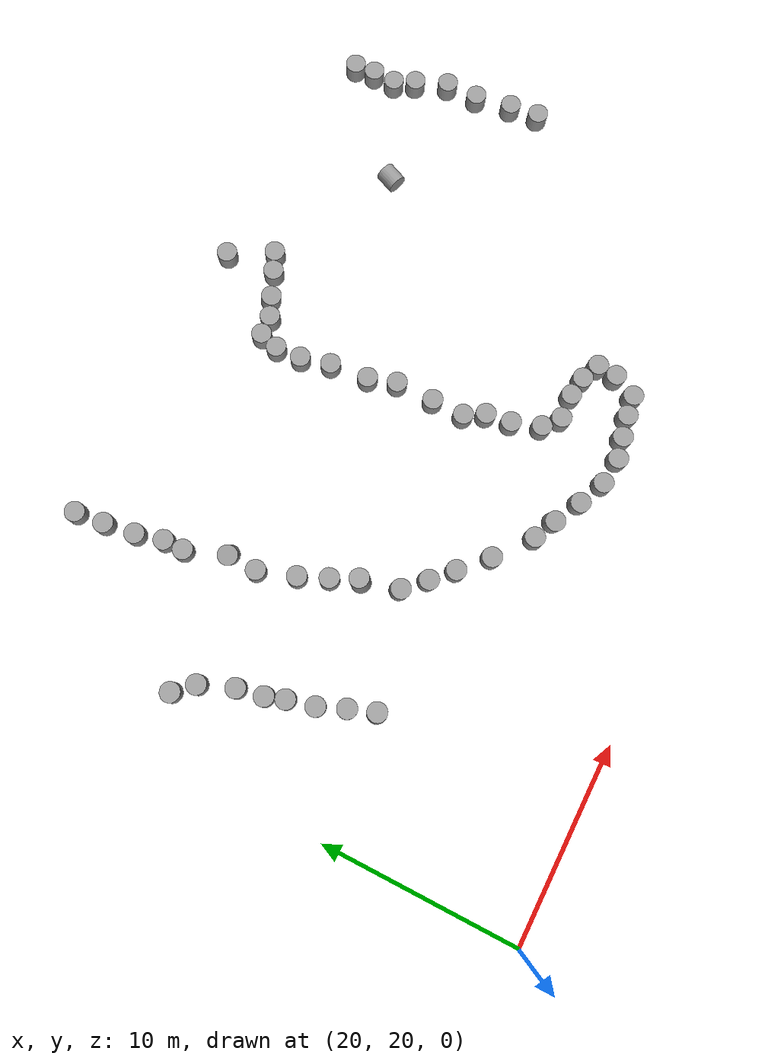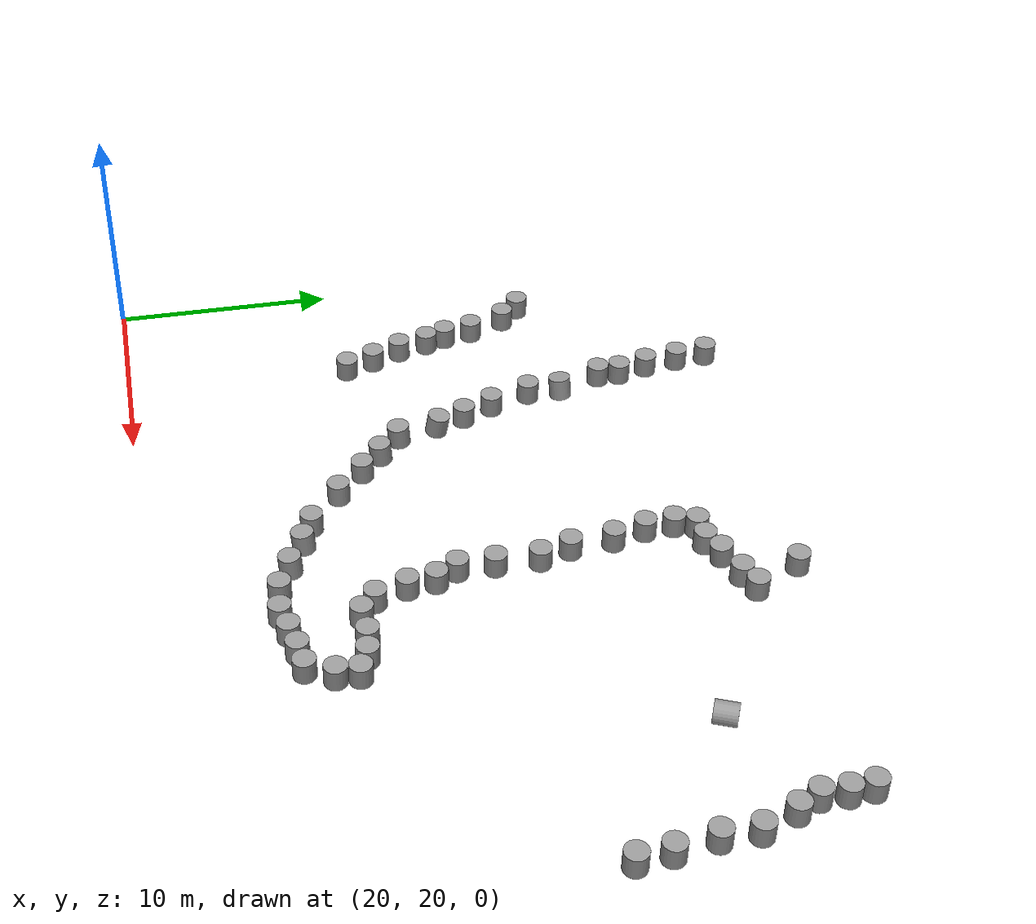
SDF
<sdf version="1.7">
 <world name="default">
  <model name="unit_cylinder_clone_40">
   <pose>28.2706 47.4767 0.449998 -2e-06 6e-06 -0.000437</pose>
   <link name="link">
    <inertial>
     <mass>1</mass>
     <inertia><ixx>0.145833</ixx><ixy>0</ixy><ixz>0</ixz><iyy>0.145833</iyy><iyz>0</iyz><izz>0.125</izz></inertia>
    </inertial>
    <collision name="collision">
     <geometry><cylinder><radius>0.5</radius><length>1</length></cylinder></geometry>
    </collision>
    <visual name="visual">
     <geometry><cylinder><radius>0.5</radius><length>1</length></cylinder></geometry>
     <material>
      <script><name>Gazebo/Grey</name><uri>file://media/materials/scripts/gazebo.material</uri></script>
     </material>
    </visual>
   </link>
  </model>
  <model name="unit_cylinder_clone_41">
   <pose>28.4209 46.0001 0.449995 -5e-06 6e-06 -0.001146</pose>
   <link name="link">
    <inertial>
     <mass>1</mass>
     <inertia><ixx>0.145833</ixx><ixy>0</ixy><ixz>0</ixz><iyy>0.145833</iyy><iyz>0</iyz><izz>0.125</izz></inertia>
    </inertial>
    <collision name="collision">
     <geometry><cylinder><radius>0.5</radius><length>1</length></cylinder></geometry>
    </collision>
    <visual name="visual">
     <geometry><cylinder><radius>0.5</radius><length>1</length></cylinder></geometry>
     <material>
      <script><name>Gazebo/Grey</name><uri>file://media/materials/scripts/gazebo.material</uri></script>
     </material>
    </visual>
   </link>
  </model>
  <model name="unit_cylinder_clone_42">
   <pose>28.6472 44.4234 0.449998 4e-06 6e-06 -0.002847</pose>
   <link name="link">
    <inertial>
     <mass>1</mass>
     <inertia><ixx>0.145833</ixx><ixy>0</ixy><ixz>0</ixz><iyy>0.145833</iyy><iyz>0</iyz><izz>0.125</izz></inertia>
    </inertial>
    <collision name="collision">
     <geometry><cylinder><radius>0.5</radius><length>1</length></cylinder></geometry>
    </collision>
    <visual name="visual">
     <geometry><cylinder><radius>0.5</radius><length>1</length></cylinder></geometry>
     <material>
      <script><name>Gazebo/Grey</name><uri>file://media/materials/scripts/gazebo.material</uri></script>
     </material>
    </visual>
   </link>
  </model>
  <model name="unit_cylinder_clone_43">
   <pose>28.9953 43.0368 0.449997 2e-06 2e-06 -0.000409</pose>
   <link name="link">
    <inertial>
     <mass>1</mass>
     <inertia><ixx>0.145833</ixx><ixy>0</ixy><ixz>0</ixz><iyy>0.145833</iyy><iyz>0</iyz><izz>0.125</izz></inertia>
    </inertial>
    <collision name="collision">
     <geometry><cylinder><radius>0.5</radius><length>1</length></cylinder></geometry>
    </collision>
    <visual name="visual">
     <geometry><cylinder><radius>0.5</radius><length>1</length></cylinder></geometry>
     <material>
      <script><name>Gazebo/Grey</name><uri>file://media/materials/scripts/gazebo.material</uri></script>
     </material>
    </visual>
   </link>
  </model>
  <model name="unit_cylinder_clone_44">
   <pose>28.9999 41.9999 0.449996 -1e-06 -1e-05 -0.000407</pose>
   <link name="link">
    <inertial>
     <mass>1</mass>
     <inertia><ixx>0.145833</ixx><ixy>0</ixy><ixz>0</ixz><iyy>0.145833</iyy><iyz>0</iyz><izz>0.125</izz></inertia>
    </inertial>
    <collision name="collision">
     <geometry><cylinder><radius>0.5</radius><length>1</length></cylinder></geometry>
    </collision>
    <visual name="visual">
     <geometry><cylinder><radius>0.5</radius><length>1</length></cylinder></geometry>
     <material>
      <script><name>Gazebo/Grey</name><uri>file://media/materials/scripts/gazebo.material</uri></script>
     </material>
    </visual>
   </link>
  </model>
  <model name="unit_cylinder_clone_45">
   <pose>29.7901 39.9739 0.521916 0.043896 -0.150505 0.063909</pose>
   <link name="link">
    <inertial>
     <mass>1</mass>
     <inertia><ixx>0.145833</ixx><ixy>0</ixy><ixz>0</ixz><iyy>0.145833</iyy><iyz>0</iyz><izz>0.125</izz></inertia>
    </inertial>
    <collision name="collision">
     <geometry><cylinder><radius>0.5</radius><length>1</length></cylinder></geometry>
    </collision>
    <visual name="visual">
     <geometry><cylinder><radius>0.5</radius><length>1</length></cylinder></geometry>
     <material>
      <script><name>Gazebo/Grey</name><uri>file://media/materials/scripts/gazebo.material</uri></script>
     </material>
    </visual>
   </link>
  </model>
  <model name="unit_cylinder_clone_46">
   <pose>29.7046 38.4537 0.449997 -3e-06 -1.6e-05 -0.000471</pose>
   <link name="link">
    <inertial>
     <mass>1</mass>
     <inertia><ixx>0.145833</ixx><ixy>0</ixy><ixz>0</ixz><iyy>0.145833</iyy><iyz>0</iyz><izz>0.125</izz></inertia>
    </inertial>
    <collision name="collision">
     <geometry><cylinder><radius>0.5</radius><length>1</length></cylinder></geometry>
    </collision>
    <visual name="visual">
     <geometry><cylinder><radius>0.5</radius><length>1</length></cylinder></geometry>
     <material>
      <script><name>Gazebo/Grey</name><uri>file://media/materials/scripts/gazebo.material</uri></script>
     </material>
    </visual>
   </link>
  </model>
  <model name="unit_cylinder_clone_47">
   <pose>30.3299 36.5776 0.449996 2e-06 -1e-06 -0.000429</pose>
   <link name="link">
    <inertial>
     <mass>1</mass>
     <inertia><ixx>0.145833</ixx><ixy>0</ixy><ixz>0</ixz><iyy>0.145833</iyy><iyz>0</iyz><izz>0.125</izz></inertia>
    </inertial>
    <collision name="collision">
     <geometry><cylinder><radius>0.5</radius><length>1</length></cylinder></geometry>
    </collision>
    <visual name="visual">
     <geometry><cylinder><radius>0.5</radius><length>1</length></cylinder></geometry>
     <material>
      <script><name>Gazebo/Grey</name><uri>file://media/materials/scripts/gazebo.material</uri></script>
     </material>
    </visual>
   </link>
  </model>
  <model name="unit_cylinder_clone_48">
   <pose>30.9384 35.1625 0.4581 -0.014949 0.006573 -0.004222</pose>
   <link name="link">
    <inertial>
     <mass>1</mass>
     <inertia><ixx>0.145833</ixx><ixy>0</ixy><ixz>0</ixz><iyy>0.145833</iyy><iyz>0</iyz><izz>0.125</izz></inertia>
    </inertial>
    <collision name="collision">
     <geometry><cylinder><radius>0.5</radius><length>1</length></cylinder></geometry>
    </collision>
    <visual name="visual">
     <geometry><cylinder><radius>0.5</radius><length>1</length></cylinder></geometry>
     <material>
      <script><name>Gazebo/Grey</name><uri>file://media/materials/scripts/gazebo.material</uri></script>
     </material>
    </visual>
   </link>
  </model>
  <model name="unit_cylinder_clone_49">
   <pose>31.5256 33.8276 0.545893 -0.149557 0.068168 -0.025049</pose>
   <link name="link">
    <inertial>
     <mass>1</mass>
     <inertia><ixx>0.145833</ixx><ixy>0</ixy><ixz>0</ixz><iyy>0.145833</iyy><iyz>0</iyz><izz>0.125</izz></inertia>
    </inertial>
    <collision name="collision">
     <geometry><cylinder><radius>0.5</radius><length>1</length></cylinder></geometry>
    </collision>
    <visual name="visual">
     <geometry><cylinder><radius>0.5</radius><length>1</length></cylinder></geometry>
     <material>
      <script><name>Gazebo/Grey</name><uri>file://media/materials/scripts/gazebo.material</uri></script>
     </material>
    </visual>
   </link>
  </model>
  <model name="unit_cylinder_clone_50">
   <pose>31.9968 31.9487 0.562286 0.066819 -0.002533 -0.000927</pose>
   <link name="link">
    <inertial>
     <mass>1</mass>
     <inertia><ixx>0.145833</ixx><ixy>0</ixy><ixz>0</ixz><iyy>0.145833</iyy><iyz>0</iyz><izz>0.125</izz></inertia>
    </inertial>
    <collision name="collision">
     <geometry><cylinder><radius>0.5</radius><length>1</length></cylinder></geometry>
    </collision>
    <visual name="visual">
     <geometry><cylinder><radius>0.5</radius><length>1</length></cylinder></geometry>
     <material>
      <script><name>Gazebo/Grey</name><uri>file://media/materials/scripts/gazebo.material</uri></script>
     </material>
    </visual>
   </link>
  </model>
  <model name="unit_cylinder_clone_51">
   <pose>32.9965 30.9516 0.496949 0.070173 -0.007378 -0.00225</pose>
   <link name="link">
    <inertial>
     <mass>1</mass>
     <inertia><ixx>0.145833</ixx><ixy>0</ixy><ixz>0</ixz><iyy>0.145833</iyy><iyz>0</iyz><izz>0.125</izz></inertia>
    </inertial>
    <collision name="collision">
     <geometry><cylinder><radius>0.5</radius><length>1</length></cylinder></geometry>
    </collision>
    <visual name="visual">
     <geometry><cylinder><radius>0.5</radius><length>1</length></cylinder></geometry>
     <material>
      <script><name>Gazebo/Grey</name><uri>file://media/materials/scripts/gazebo.material</uri></script>
     </material>
    </visual>
   </link>
  </model>
  <model name="unit_cylinder_clone_52">
   <pose>33.997 29.9847 0.460635 0.021172 -0.003893 0.001574</pose>
   <link name="link">
    <inertial>
     <mass>1</mass>
     <inertia><ixx>0.145833</ixx><ixy>0</ixy><ixz>0</ixz><iyy>0.145833</iyy><iyz>0</iyz><izz>0.125</izz></inertia>
    </inertial>
    <collision name="collision">
     <geometry><cylinder><radius>0.5</radius><length>1</length></cylinder></geometry>
    </collision>
    <visual name="visual">
     <geometry><cylinder><radius>0.5</radius><length>1</length></cylinder></geometry>
     <material>
      <script><name>Gazebo/Grey</name><uri>file://media/materials/scripts/gazebo.material</uri></script>
     </material>
    </visual>
   </link>
  </model>
  <model name="unit_cylinder_clone_53">
   <pose>35.3203 28.7401 0.460367 0.012616 -0.016827 -0.004228</pose>
   <link name="link">
    <inertial>
     <mass>1</mass>
     <inertia><ixx>0.145833</ixx><ixy>0</ixy><ixz>0</ixz><iyy>0.145833</iyy><iyz>0</iyz><izz>0.125</izz></inertia>
    </inertial>
    <collision name="collision">
     <geometry><cylinder><radius>0.5</radius><length>1</length></cylinder></geometry>
    </collision>
    <visual name="visual">
     <geometry><cylinder><radius>0.5</radius><length>1</length></cylinder></geometry>
     <material>
      <script><name>Gazebo/Grey</name><uri>file://media/materials/scripts/gazebo.material</uri></script>
     </material>
    </visual>
   </link>
  </model>
  <model name="unit_cylinder_clone_54">
   <pose>37.0983 27.3236 0.449999 -2.1e-05 3.2e-05 0.083038</pose>
   <link name="link">
    <inertial>
     <mass>1</mass>
     <inertia><ixx>0.145833</ixx><ixy>0</ixy><ixz>0</ixz><iyy>0.145833</iyy><iyz>0</iyz><izz>0.125</izz></inertia>
    </inertial>
    <collision name="collision">
     <geometry><cylinder><radius>0.5</radius><length>1</length></cylinder></geometry>
    </collision>
    <visual name="visual">
     <geometry><cylinder><radius>0.5</radius><length>1</length></cylinder></geometry>
     <material>
      <script><name>Gazebo/Grey</name><uri>file://media/materials/scripts/gazebo.material</uri></script>
     </material>
    </visual>
   </link>
  </model>
  <model name="unit_cylinder_clone_55">
   <pose>38.2509 26.8191 0.479731 0.075918 -0.03911 -0.014282</pose>
   <link name="link">
    <inertial>
     <mass>1</mass>
     <inertia><ixx>0.145833</ixx><ixy>0</ixy><ixz>0</ixz><iyy>0.145833</iyy><iyz>0</iyz><izz>0.125</izz></inertia>
    </inertial>
    <collision name="collision">
     <geometry><cylinder><radius>0.5</radius><length>1</length></cylinder></geometry>
    </collision>
    <visual name="visual">
     <geometry><cylinder><radius>0.5</radius><length>1</length></cylinder></geometry>
     <material>
      <script><name>Gazebo/Grey</name><uri>file://media/materials/scripts/gazebo.material</uri></script>
     </material>
    </visual>
   </link>
  </model>
  <model name="unit_cylinder_clone_56">
   <pose>39.6128 26.1087 0.47015 0.05068 -0.026128 -0.01348</pose>
   <link name="link">
    <inertial>
     <mass>1</mass>
     <inertia><ixx>0.145833</ixx><ixy>0</ixy><ixz>0</ixz><iyy>0.145833</iyy><iyz>0</iyz><izz>0.125</izz></inertia>
    </inertial>
    <collision name="collision">
     <geometry><cylinder><radius>0.5</radius><length>1</length></cylinder></geometry>
    </collision>
    <visual name="visual">
     <geometry><cylinder><radius>0.5</radius><length>1</length></cylinder></geometry>
     <material>
      <script><name>Gazebo/Grey</name><uri>file://media/materials/scripts/gazebo.material</uri></script>
     </material>
    </visual>
   </link>
  </model>
  <model name="unit_cylinder_clone_57">
   <pose>40.9835 25.5019 0.45185 -0.001512 -0.003464 0.144389</pose>
   <link name="link">
    <inertial>
     <mass>1</mass>
     <inertia><ixx>0.145833</ixx><ixy>0</ixy><ixz>0</ixz><iyy>0.145833</iyy><iyz>0</iyz><izz>0.125</izz></inertia>
    </inertial>
    <collision name="collision">
     <geometry><cylinder><radius>0.5</radius><length>1</length></cylinder></geometry>
    </collision>
    <visual name="visual">
     <geometry><cylinder><radius>0.5</radius><length>1</length></cylinder></geometry>
     <material>
      <script><name>Gazebo/Grey</name><uri>file://media/materials/scripts/gazebo.material</uri></script>
     </material>
    </visual>
   </link>
  </model>
  <model name="unit_cylinder_clone_58">
   <pose>42.3932 25.3653 0.461981 -0.006801 -0.006234 0.55232</pose>
   <link name="link">
    <inertial>
     <mass>1</mass>
     <inertia><ixx>0.145833</ixx><ixy>0</ixy><ixz>0</ixz><iyy>0.145833</iyy><iyz>0</iyz><izz>0.125</izz></inertia>
    </inertial>
    <collision name="collision">
     <geometry><cylinder><radius>0.5</radius><length>1</length></cylinder></geometry>
    </collision>
    <visual name="visual">
     <geometry><cylinder><radius>0.5</radius><length>1</length></cylinder></geometry>
     <material>
      <script><name>Gazebo/Grey</name><uri>file://media/materials/scripts/gazebo.material</uri></script>
     </material>
    </visual>
   </link>
  </model>
  <model name="unit_cylinder_clone_59">
   <pose>43.4737 25.5985 0.459168 -0.006183 0.006722 -0.012795</pose>
   <link name="link">
    <inertial>
     <mass>1</mass>
     <inertia><ixx>0.145833</ixx><ixy>0</ixy><ixz>0</ixz><iyy>0.145833</iyy><iyz>0</iyz><izz>0.125</izz></inertia>
    </inertial>
    <collision name="collision">
     <geometry><cylinder><radius>0.5</radius><length>1</length></cylinder></geometry>
    </collision>
    <visual name="visual">
     <geometry><cylinder><radius>0.5</radius><length>1</length></cylinder></geometry>
     <material>
      <script><name>Gazebo/Grey</name><uri>file://media/materials/scripts/gazebo.material</uri></script>
     </material>
    </visual>
   </link>
  </model>
  <model name="unit_cylinder_clone_60">
   <pose>44.5677 25.8286 0.451107 -0.007543 0.004491 -0.016894</pose>
   <link name="link">
    <inertial>
     <mass>1</mass>
     <inertia><ixx>0.145833</ixx><ixy>0</ixy><ixz>0</ixz><iyy>0.145833</iyy><iyz>0</iyz><izz>0.125</izz></inertia>
    </inertial>
    <collision name="collision">
     <geometry><cylinder><radius>0.5</radius><length>1</length></cylinder></geometry>
    </collision>
    <visual name="visual">
     <geometry><cylinder><radius>0.5</radius><length>1</length></cylinder></geometry>
     <material>
      <script><name>Gazebo/Grey</name><uri>file://media/materials/scripts/gazebo.material</uri></script>
     </material>
    </visual>
   </link>
  </model>
  <model name="unit_cylinder_clone_61">
   <pose>45.5954 25.9902 0.435513 0.004527 0.028084 0.01941</pose>
   <link name="link">
    <inertial>
     <mass>1</mass>
     <inertia><ixx>0.145833</ixx><ixy>0</ixy><ixz>0</ixz><iyy>0.145833</iyy><iyz>0</iyz><izz>0.125</izz></inertia>
    </inertial>
    <collision name="collision">
     <geometry><cylinder><radius>0.5</radius><length>1</length></cylinder></geometry>
    </collision>
    <visual name="visual">
     <geometry><cylinder><radius>0.5</radius><length>1</length></cylinder></geometry>
     <material>
      <script><name>Gazebo/Grey</name><uri>file://media/materials/scripts/gazebo.material</uri></script>
     </material>
    </visual>
   </link>
  </model>
  <model name="unit_cylinder_clone_62">
   <pose>46.1691 27.1614 0.422465 -0.003016 0.018332 -0.064298</pose>
   <link name="link">
    <inertial>
     <mass>1</mass>
     <inertia><ixx>0.145833</ixx><ixy>0</ixy><ixz>0</ixz><iyy>0.145833</iyy><iyz>0</iyz><izz>0.125</izz></inertia>
    </inertial>
    <collision name="collision">
     <geometry><cylinder><radius>0.5</radius><length>1</length></cylinder></geometry>
    </collision>
    <visual name="visual">
     <geometry><cylinder><radius>0.5</radius><length>1</length></cylinder></geometry>
     <material>
      <script><name>Gazebo/Grey</name><uri>file://media/materials/scripts/gazebo.material</uri></script>
     </material>
    </visual>
   </link>
  </model>
  <model name="unit_cylinder_clone_63">
   <pose>46.2578 28.164 0.418753 -0.002547 0.01705 -0.02722</pose>
   <link name="link">
    <inertial>
     <mass>1</mass>
     <inertia><ixx>0.145833</ixx><ixy>0</ixy><ixz>0</ixz><iyy>0.145833</iyy><iyz>0</iyz><izz>0.125</izz></inertia>
    </inertial>
    <collision name="collision">
     <geometry><cylinder><radius>0.5</radius><length>1</length></cylinder></geometry>
    </collision>
    <visual name="visual">
     <geometry><cylinder><radius>0.5</radius><length>1</length></cylinder></geometry>
     <material>
      <script><name>Gazebo/Grey</name><uri>file://media/materials/scripts/gazebo.material</uri></script>
     </material>
    </visual>
   </link>
  </model>
  <model name="unit_cylinder_clone_64">
   <pose>45.3182 28.57 0.428564 -0.005621 0.007208 0.045716</pose>
   <link name="link">
    <inertial>
     <mass>1</mass>
     <inertia><ixx>0.145833</ixx><ixy>0</ixy><ixz>0</ixz><iyy>0.145833</iyy><iyz>0</iyz><izz>0.125</izz></inertia>
    </inertial>
    <collision name="collision">
     <geometry><cylinder><radius>0.5</radius><length>1</length></cylinder></geometry>
    </collision>
    <visual name="visual">
     <geometry><cylinder><radius>0.5</radius><length>1</length></cylinder></geometry>
     <material>
      <script><name>Gazebo/Grey</name><uri>file://media/materials/scripts/gazebo.material</uri></script>
     </material>
    </visual>
   </link>
  </model>
  <model name="unit_cylinder_clone_65">
   <pose>44.2873 28.7141 0.435556 -0.004921 0.008388 0.028474</pose>
   <link name="link">
    <inertial>
     <mass>1</mass>
     <inertia><ixx>0.145833</ixx><ixy>0</ixy><ixz>0</ixz><iyy>0.145833</iyy><iyz>0</iyz><izz>0.125</izz></inertia>
    </inertial>
    <collision name="collision">
     <geometry><cylinder><radius>0.5</radius><length>1</length></cylinder></geometry>
    </collision>
    <visual name="visual">
     <geometry><cylinder><radius>0.5</radius><length>1</length></cylinder></geometry>
     <material>
      <script><name>Gazebo/Grey</name><uri>file://media/materials/scripts/gazebo.material</uri></script>
     </material>
    </visual>
   </link>
  </model>
  <model name="unit_cylinder_clone_66">
   <pose>43.0154 28.6533 0.446354 -0.005135 0.008249 0.001852</pose>
   <link name="link">
    <inertial>
     <mass>1</mass>
     <inertia><ixx>0.145833</ixx><ixy>0</ixy><ixz>0</ixz><iyy>0.145833</iyy><iyz>0</iyz><izz>0.125</izz></inertia>
    </inertial>
    <collision name="collision">
     <geometry><cylinder><radius>0.5</radius><length>1</length></cylinder></geometry>
    </collision>
    <visual name="visual">
     <geometry><cylinder><radius>0.5</radius><length>1</length></cylinder></geometry>
     <material>
      <script><name>Gazebo/Grey</name><uri>file://media/materials/scripts/gazebo.material</uri></script>
     </material>
    </visual>
   </link>
  </model>
  <model name="unit_cylinder_clone_67">
   <pose>42.2027 29.3361 0.452303 -0.001311 0.012247 -0.000434</pose>
   <link name="link">
    <inertial>
     <mass>1</mass>
     <inertia><ixx>0.145833</ixx><ixy>0</ixy><ixz>0</ixz><iyy>0.145833</iyy><iyz>0</iyz><izz>0.125</izz></inertia>
    </inertial>
    <collision name="collision">
     <geometry><cylinder><radius>0.5</radius><length>1</length></cylinder></geometry>
    </collision>
    <visual name="visual">
     <geometry><cylinder><radius>0.5</radius><length>1</length></cylinder></geometry>
     <material>
      <script><name>Gazebo/Grey</name><uri>file://media/materials/scripts/gazebo.material</uri></script>
     </material>
    </visual>
   </link>
  </model>
  <model name="unit_cylinder_clone_68">
   <pose>41.7172 30.7624 0.45005 -7e-06 7e-06 -0.000466</pose>
   <link name="link">
    <inertial>
     <mass>1</mass>
     <inertia><ixx>0.145833</ixx><ixy>0</ixy><ixz>0</ixz><iyy>0.145833</iyy><iyz>0</iyz><izz>0.125</izz></inertia>
    </inertial>
    <collision name="collision">
     <geometry><cylinder><radius>0.5</radius><length>1</length></cylinder></geometry>
    </collision>
    <visual name="visual">
     <geometry><cylinder><radius>0.5</radius><length>1</length></cylinder></geometry>
     <material>
      <script><name>Gazebo/Grey</name><uri>file://media/materials/scripts/gazebo.material</uri></script>
     </material>
    </visual>
   </link>
  </model>
  <model name="unit_cylinder_clone_69">
   <pose>41.5393 32.028 0.450051 -0 5e-06 -0.00044</pose>
   <link name="link">
    <inertial>
     <mass>1</mass>
     <inertia><ixx>0.145833</ixx><ixy>0</ixy><ixz>0</ixz><iyy>0.145833</iyy><iyz>0</iyz><izz>0.125</izz></inertia>
    </inertial>
    <collision name="collision">
     <geometry><cylinder><radius>0.5</radius><length>1</length></cylinder></geometry>
    </collision>
    <visual name="visual">
     <geometry><cylinder><radius>0.5</radius><length>1</length></cylinder></geometry>
     <material>
      <script><name>Gazebo/Grey</name><uri>file://media/materials/scripts/gazebo.material</uri></script>
     </material>
    </visual>
   </link>
  </model>
  <model name="unit_cylinder_clone_70">
   <pose>40.9999 33 0.450049 -0 -3e-06 -0.000337</pose>
   <link name="link">
    <inertial>
     <mass>1</mass>
     <inertia><ixx>0.145833</ixx><ixy>0</ixy><ixz>0</ixz><iyy>0.145833</iyy><iyz>0</iyz><izz>0.125</izz></inertia>
    </inertial>
    <collision name="collision">
     <geometry><cylinder><radius>0.5</radius><length>1</length></cylinder></geometry>
    </collision>
    <visual name="visual">
     <geometry><cylinder><radius>0.5</radius><length>1</length></cylinder></geometry>
     <material>
      <script><name>Gazebo/Grey</name><uri>file://media/materials/scripts/gazebo.material</uri></script>
     </material>
    </visual>
   </link>
  </model>
  <model name="unit_cylinder_clone_71">
   <pose>41.0036 34.6529 0.450043 0 -0 -0.000463</pose>
   <link name="link">
    <inertial>
     <mass>1</mass>
     <inertia><ixx>0.145833</ixx><ixy>0</ixy><ixz>0</ixz><iyy>0.145833</iyy><iyz>0</iyz><izz>0.125</izz></inertia>
    </inertial>
    <collision name="collision">
     <geometry><cylinder><radius>0.5</radius><length>1</length></cylinder></geometry>
    </collision>
    <visual name="visual">
     <geometry><cylinder><radius>0.5</radius><length>1</length></cylinder></geometry>
     <material>
      <script><name>Gazebo/Grey</name><uri>file://media/materials/scripts/gazebo.material</uri></script>
     </material>
    </visual>
   </link>
  </model>
  <model name="unit_cylinder_clone_72">
   <pose>41.0001 36.5959 0.450031 -3.6e-05 0.000243 -0.000418</pose>
   <link name="link">
    <inertial>
     <mass>1</mass>
     <inertia><ixx>0.145833</ixx><ixy>0</ixy><ixz>0</ixz><iyy>0.145833</iyy><iyz>0</iyz><izz>0.125</izz></inertia>
    </inertial>
    <collision name="collision">
     <geometry><cylinder><radius>0.5</radius><length>1</length></cylinder></geometry>
    </collision>
    <visual name="visual">
     <geometry><cylinder><radius>0.5</radius><length>1</length></cylinder></geometry>
     <material>
      <script><name>Gazebo/Grey</name><uri>file://media/materials/scripts/gazebo.material</uri></script>
     </material>
    </visual>
   </link>
  </model>
  <model name="unit_cylinder_clone_73">
   <pose>40.5703 37.9999 0.450035 -2e-06 -1e-06 -0.000477</pose>
   <link name="link">
    <inertial>
     <mass>1</mass>
     <inertia><ixx>0.145833</ixx><ixy>0</ixy><ixz>0</ixz><iyy>0.145833</iyy><iyz>0</iyz><izz>0.125</izz></inertia>
    </inertial>
    <collision name="collision">
     <geometry><cylinder><radius>0.5</radius><length>1</length></cylinder></geometry>
    </collision>
    <visual name="visual">
     <geometry><cylinder><radius>0.5</radius><length>1</length></cylinder></geometry>
     <material>
      <script><name>Gazebo/Grey</name><uri>file://media/materials/scripts/gazebo.material</uri></script>
     </material>
    </visual>
   </link>
  </model>
  <model name="unit_cylinder_clone_74">
   <pose>40.3791 39.9405 0.450032 3e-06 -0 -0.000429</pose>
   <link name="link">
    <inertial>
     <mass>1</mass>
     <inertia><ixx>0.145833</ixx><ixy>0</ixy><ixz>0</ixz><iyy>0.145833</iyy><iyz>0</iyz><izz>0.125</izz></inertia>
    </inertial>
    <collision name="collision">
     <geometry><cylinder><radius>0.5</radius><length>1</length></cylinder></geometry>
    </collision>
    <visual name="visual">
     <geometry><cylinder><radius>0.5</radius><length>1</length></cylinder></geometry>
     <material>
      <script><name>Gazebo/Grey</name><uri>file://media/materials/scripts/gazebo.material</uri></script>
     </material>
    </visual>
   </link>
  </model>
  <model name="unit_cylinder_clone_75">
   <pose>39.9999 41.4197 0.450027 -7e-06 -1e-06 -0.000478</pose>
   <link name="link">
    <inertial>
     <mass>1</mass>
     <inertia><ixx>0.145833</ixx><ixy>0</ixy><ixz>0</ixz><iyy>0.145833</iyy><iyz>0</iyz><izz>0.125</izz></inertia>
    </inertial>
    <collision name="collision">
     <geometry><cylinder><radius>0.5</radius><length>1</length></cylinder></geometry>
    </collision>
    <visual name="visual">
     <geometry><cylinder><radius>0.5</radius><length>1</length></cylinder></geometry>
     <material>
      <script><name>Gazebo/Grey</name><uri>file://media/materials/scripts/gazebo.material</uri></script>
     </material>
    </visual>
   </link>
  </model>
  <model name="unit_cylinder_clone_76">
   <pose>39.9277 42.7244 0.45264 0.004986 -0.002018 0.104061</pose>
   <link name="link">
    <inertial>
     <mass>1</mass>
     <inertia><ixx>0.145833</ixx><ixy>0</ixy><ixz>0</ixz><iyy>0.145833</iyy><iyz>0</iyz><izz>0.125</izz></inertia>
    </inertial>
    <collision name="collision">
     <geometry><cylinder><radius>0.5</radius><length>1</length></cylinder></geometry>
    </collision>
    <visual name="visual">
     <geometry><cylinder><radius>0.5</radius><length>1</length></cylinder></geometry>
     <material>
      <script><name>Gazebo/Grey</name><uri>file://media/materials/scripts/gazebo.material</uri></script>
     </material>
    </visual>
   </link>
  </model>
  <model name="unit_cylinder_clone_77">
   <pose>40.2066 43.6847 0.452386 0.005693 0.000655 -0.052563</pose>
   <link name="link">
    <inertial>
     <mass>1</mass>
     <inertia><ixx>0.145833</ixx><ixy>0</ixy><ixz>0</ixz><iyy>0.145833</iyy><iyz>0</iyz><izz>0.125</izz></inertia>
    </inertial>
    <collision name="collision">
     <geometry><cylinder><radius>0.5</radius><length>1</length></cylinder></geometry>
    </collision>
    <visual name="visual">
     <geometry><cylinder><radius>0.5</radius><length>1</length></cylinder></geometry>
     <material>
      <script><name>Gazebo/Grey</name><uri>file://media/materials/scripts/gazebo.material</uri></script>
     </material>
    </visual>
   </link>
  </model>
  <model name="unit_cylinder_clone_78">
   <pose>41.205 43.7422 0.45002 0.000207 4e-06 0.209943</pose>
   <link name="link">
    <inertial>
     <mass>1</mass>
     <inertia><ixx>0.145833</ixx><ixy>0</ixy><ixz>0</ixz><iyy>0.145833</iyy><iyz>0</iyz><izz>0.125</izz></inertia>
    </inertial>
    <collision name="collision">
     <geometry><cylinder><radius>0.5</radius><length>1</length></cylinder></geometry>
    </collision>
    <visual name="visual">
     <geometry><cylinder><radius>0.5</radius><length>1</length></cylinder></geometry>
     <material>
      <script><name>Gazebo/Grey</name><uri>file://media/materials/scripts/gazebo.material</uri></script>
     </material>
    </visual>
   </link>
  </model>
  <model name="unit_cylinder_clone_79">
   <pose>42.1436 44.1959 0.483941 0.0876 0.001315 0.15433</pose>
   <link name="link">
    <inertial>
     <mass>1</mass>
     <inertia><ixx>0.145833</ixx><ixy>0</ixy><ixz>0</ixz><iyy>0.145833</iyy><iyz>0</iyz><izz>0.125</izz></inertia>
    </inertial>
    <collision name="collision">
     <geometry><cylinder><radius>0.5</radius><length>1</length></cylinder></geometry>
    </collision>
    <visual name="visual">
     <geometry><cylinder><radius>0.5</radius><length>1</length></cylinder></geometry>
     <material>
      <script><name>Gazebo/Grey</name><uri>file://media/materials/scripts/gazebo.material</uri></script>
     </material>
    </visual>
   </link>
  </model>
  <model name="unit_cylinder_clone_80">
   <pose>43.4154 44.709 0.45003 9e-06 -0 0.075707</pose>
   <link name="link">
    <inertial>
     <mass>1</mass>
     <inertia><ixx>0.145833</ixx><ixy>0</ixy><ixz>0</ixz><iyy>0.145833</iyy><iyz>0</iyz><izz>0.125</izz></inertia>
    </inertial>
    <collision name="collision">
     <geometry><cylinder><radius>0.5</radius><length>1</length></cylinder></geometry>
    </collision>
    <visual name="visual">
     <geometry><cylinder><radius>0.5</radius><length>1</length></cylinder></geometry>
     <material>
      <script><name>Gazebo/Grey</name><uri>file://media/materials/scripts/gazebo.material</uri></script>
     </material>
    </visual>
   </link>
  </model>
  <model name="unit_cylinder_clone_81">
   <pose>44.3345 45.1166 0.450037 2.4e-05 -6e-06 0.080504</pose>
   <link name="link">
    <inertial>
     <mass>1</mass>
     <inertia><ixx>0.145833</ixx><ixy>0</ixy><ixz>0</ixz><iyy>0.145833</iyy><iyz>0</iyz><izz>0.125</izz></inertia>
    </inertial>
    <collision name="collision">
     <geometry><cylinder><radius>0.5</radius><length>1</length></cylinder></geometry>
    </collision>
    <visual name="visual">
     <geometry><cylinder><radius>0.5</radius><length>1</length></cylinder></geometry>
     <material>
      <script><name>Gazebo/Grey</name><uri>file://media/materials/scripts/gazebo.material</uri></script>
     </material>
    </visual>
   </link>
  </model>
  <model name="unit_cylinder_clone_82">
   <pose>43.2149 47.2322 0.450042 1e-06 3e-06 -0.000541</pose>
   <link name="link">
    <inertial>
     <mass>1</mass>
     <inertia><ixx>0.145833</ixx><ixy>0</ixy><ixz>0</ixz><iyy>0.145833</iyy><iyz>0</iyz><izz>0.125</izz></inertia>
    </inertial>
    <collision name="collision">
     <geometry><cylinder><radius>0.5</radius><length>1</length></cylinder></geometry>
    </collision>
    <visual name="visual">
     <geometry><cylinder><radius>0.5</radius><length>1</length></cylinder></geometry>
     <material>
      <script><name>Gazebo/Grey</name><uri>file://media/materials/scripts/gazebo.material</uri></script>
     </material>
    </visual>
   </link>
  </model>
  <model name="unit_cylinder_clone_93">
   <pose>22.8906 39.3241 0.450002 3e-06 -3e-06 -0.00018</pose>
   <link name="link">
    <inertial>
     <mass>1</mass>
     <inertia><ixx>0.145833</ixx><ixy>0</ixy><ixz>0</ixz><iyy>0.145833</iyy><iyz>0</iyz><izz>0.125</izz></inertia>
    </inertial>
    <collision name="collision">
     <geometry><cylinder><radius>0.5</radius><length>1</length></cylinder></geometry>
    </collision>
    <visual name="visual">
     <geometry><cylinder><radius>0.5</radius><length>1</length></cylinder></geometry>
     <material>
      <script><name>Gazebo/Grey</name><uri>file://media/materials/scripts/gazebo.material</uri></script>
     </material>
    </visual>
   </link>
  </model>
  <model name="unit_cylinder_clone_94">
   <pose>23.7497 38.4095 0.449996 -3e-06 3e-06 -0.000497</pose>
   <link name="link">
    <inertial>
     <mass>1</mass>
     <inertia><ixx>0.145833</ixx><ixy>0</ixy><ixz>0</ixz><iyy>0.145833</iyy><iyz>0</iyz><izz>0.125</izz></inertia>
    </inertial>
    <collision name="collision">
     <geometry><cylinder><radius>0.5</radius><length>1</length></cylinder></geometry>
    </collision>
    <visual name="visual">
     <geometry><cylinder><radius>0.5</radius><length>1</length></cylinder></geometry>
     <material>
      <script><name>Gazebo/Grey</name><uri>file://media/materials/scripts/gazebo.material</uri></script>
     </material>
    </visual>
   </link>
  </model>
  <model name="unit_cylinder_clone_95">
   <pose>24.4286 36.7079 0.449999 -1e-06 7e-06 -0.000513</pose>
   <link name="link">
    <inertial>
     <mass>1</mass>
     <inertia><ixx>0.145833</ixx><ixy>0</ixy><ixz>0</ixz><iyy>0.145833</iyy><iyz>0</iyz><izz>0.125</izz></inertia>
    </inertial>
    <collision name="collision">
     <geometry><cylinder><radius>0.5</radius><length>1</length></cylinder></geometry>
    </collision>
    <visual name="visual">
     <geometry><cylinder><radius>0.5</radius><length>1</length></cylinder></geometry>
     <material>
      <script><name>Gazebo/Grey</name><uri>file://media/materials/scripts/gazebo.material</uri></script>
     </material>
    </visual>
   </link>
  </model>
  <model name="unit_cylinder_clone_96">
   <pose>25.0196 34.4065 0.45 -1e-05 1.5e-05 0.005449</pose>
   <link name="link">
    <inertial>
     <mass>1</mass>
     <inertia><ixx>0.145833</ixx><ixy>0</ixy><ixz>0</ixz><iyy>0.145833</iyy><iyz>0</iyz><izz>0.125</izz></inertia>
    </inertial>
    <collision name="collision">
     <geometry><cylinder><radius>0.5</radius><length>1</length></cylinder></geometry>
    </collision>
    <visual name="visual">
     <geometry><cylinder><radius>0.5</radius><length>1</length></cylinder></geometry>
     <material>
      <script><name>Gazebo/Grey</name><uri>file://media/materials/scripts/gazebo.material</uri></script>
     </material>
    </visual>
   </link>
  </model>
  <model name="unit_cylinder_clone_97">
   <pose>24.6897 35.3593 0.449991 0 -0 0.002307</pose>
   <link name="link">
    <inertial>
     <mass>1</mass>
     <inertia><ixx>0.145833</ixx><ixy>0</ixy><ixz>0</ixz><iyy>0.145833</iyy><iyz>0</iyz><izz>0.125</izz></inertia>
    </inertial>
    <collision name="collision">
     <geometry><cylinder><radius>0.5</radius><length>1</length></cylinder></geometry>
    </collision>
    <visual name="visual">
     <geometry><cylinder><radius>0.5</radius><length>1</length></cylinder></geometry>
     <material>
      <script><name>Gazebo/Grey</name><uri>file://media/materials/scripts/gazebo.material</uri></script>
     </material>
    </visual>
   </link>
  </model>
  <model name="unit_cylinder_clone_98">
   <pose>25.3601 33.0223 0.449999 -2e-06 3e-06 -0.000514</pose>
   <link name="link">
    <inertial>
     <mass>1</mass>
     <inertia><ixx>0.145833</ixx><ixy>0</ixy><ixz>0</ixz><iyy>0.145833</iyy><iyz>0</iyz><izz>0.125</izz></inertia>
    </inertial>
    <collision name="collision">
     <geometry><cylinder><radius>0.5</radius><length>1</length></cylinder></geometry>
    </collision>
    <visual name="visual">
     <geometry><cylinder><radius>0.5</radius><length>1</length></cylinder></geometry>
     <material>
      <script><name>Gazebo/Grey</name><uri>file://media/materials/scripts/gazebo.material</uri></script>
     </material>
    </visual>
   </link>
  </model>
  <model name="unit_cylinder_clone_99">
   <pose>25.927 31.6697 0.450325 -0.001543 0.005261 -0.000528</pose>
   <link name="link">
    <inertial>
     <mass>1</mass>
     <inertia><ixx>0.145833</ixx><ixy>0</ixy><ixz>0</ixz><iyy>0.145833</iyy><iyz>0</iyz><izz>0.125</izz></inertia>
    </inertial>
    <collision name="collision">
     <geometry><cylinder><radius>0.5</radius><length>1</length></cylinder></geometry>
    </collision>
    <visual name="visual">
     <geometry><cylinder><radius>0.5</radius><length>1</length></cylinder></geometry>
     <material>
      <script><name>Gazebo/Grey</name><uri>file://media/materials/scripts/gazebo.material</uri></script>
     </material>
    </visual>
   </link>
  </model>
  <model name="unit_cylinder_clone_100">
   <pose>26.3921 30.3493 0.452785 -0.018319 0.040729 -0.000865</pose>
   <link name="link">
    <inertial>
     <mass>1</mass>
     <inertia><ixx>0.145833</ixx><ixy>0</ixy><ixz>0</ixz><iyy>0.145833</iyy><iyz>0</iyz><izz>0.125</izz></inertia>
    </inertial>
    <collision name="collision">
     <geometry><cylinder><radius>0.5</radius><length>1</length></cylinder></geometry>
    </collision>
    <visual name="visual">
     <geometry><cylinder><radius>0.5</radius><length>1</length></cylinder></geometry>
     <material>
      <script><name>Gazebo/Grey</name><uri>file://media/materials/scripts/gazebo.material</uri></script>
     </material>
    </visual>
   </link>
  </model>
  <model name="unit_cylinder_clone_221">
   <pose>55.4515 46.1843 0.452097 0.000428 -0.002248 -0.006061</pose>
   <link name="link">
    <inertial>
     <mass>1</mass>
     <inertia><ixx>0.145833</ixx><ixy>0</ixy><ixz>0</ixz><iyy>0.145833</iyy><iyz>0</iyz><izz>0.125</izz></inertia>
    </inertial>
    <collision name="collision">
     <geometry><cylinder><radius>0.5</radius><length>1</length></cylinder></geometry>
    </collision>
    <visual name="visual">
     <geometry><cylinder><radius>0.5</radius><length>1</length></cylinder></geometry>
     <material>
      <script><name>Gazebo/Grey</name><uri>file://media/materials/scripts/gazebo.material</uri></script>
     </material>
    </visual>
   </link>
  </model>
  <model name="unit_cylinder_clone_222">
   <pose>55.5242 45.1441 0.451467 0.000199 -0.000756 -0.075817</pose>
   <link name="link">
    <inertial>
     <mass>1</mass>
     <inertia><ixx>0.145833</ixx><ixy>0</ixy><ixz>0</ixz><iyy>0.145833</iyy><iyz>0</iyz><izz>0.125</izz></inertia>
    </inertial>
    <collision name="collision">
     <geometry><cylinder><radius>0.5</radius><length>1</length></cylinder></geometry>
    </collision>
    <visual name="visual">
     <geometry><cylinder><radius>0.5</radius><length>1</length></cylinder></geometry>
     <material>
      <script><name>Gazebo/Grey</name><uri>file://media/materials/scripts/gazebo.material</uri></script>
     </material>
    </visual>
   </link>
  </model>
  <model name="unit_cylinder_clone_223">
   <pose>55.4972 43.9999 0.451276 -6e-06 3.3e-05 -0.000614</pose>
   <link name="link">
    <inertial>
     <mass>1</mass>
     <inertia><ixx>0.145833</ixx><ixy>0</ixy><ixz>0</ixz><iyy>0.145833</iyy><iyz>0</iyz><izz>0.125</izz></inertia>
    </inertial>
    <collision name="collision">
     <geometry><cylinder><radius>0.5</radius><length>1</length></cylinder></geometry>
    </collision>
    <visual name="visual">
     <geometry><cylinder><radius>0.5</radius><length>1</length></cylinder></geometry>
     <material>
      <script><name>Gazebo/Grey</name><uri>file://media/materials/scripts/gazebo.material</uri></script>
     </material>
    </visual>
   </link>
  </model>
  <model name="unit_cylinder_clone_224">
   <pose>55.9999 42.9999 0.451267 -2.4e-05 4.1e-05 -0.000647</pose>
   <link name="link">
    <inertial>
     <mass>1</mass>
     <inertia><ixx>0.145833</ixx><ixy>0</ixy><ixz>0</ixz><iyy>0.145833</iyy><iyz>0</iyz><izz>0.125</izz></inertia>
    </inertial>
    <collision name="collision">
     <geometry><cylinder><radius>0.5</radius><length>1</length></cylinder></geometry>
    </collision>
    <visual name="visual">
     <geometry><cylinder><radius>0.5</radius><length>1</length></cylinder></geometry>
     <material>
      <script><name>Gazebo/Grey</name><uri>file://media/materials/scripts/gazebo.material</uri></script>
     </material>
    </visual>
   </link>
  </model>
  <model name="unit_cylinder_clone_225">
   <pose>56.6456 41.4414 0.451239 1.8e-05 -2.1e-05 -0.099398</pose>
   <link name="link">
    <inertial>
     <mass>1</mass>
     <inertia><ixx>0.145833</ixx><ixy>0</ixy><ixz>0</ixz><iyy>0.145833</iyy><iyz>0</iyz><izz>0.125</izz></inertia>
    </inertial>
    <collision name="collision">
     <geometry><cylinder><radius>0.5</radius><length>1</length></cylinder></geometry>
    </collision>
    <visual name="visual">
     <geometry><cylinder><radius>0.5</radius><length>1</length></cylinder></geometry>
     <material>
      <script><name>Gazebo/Grey</name><uri>file://media/materials/scripts/gazebo.material</uri></script>
     </material>
    </visual>
   </link>
  </model>
  <model name="unit_cylinder_clone_226">
   <pose>50.8225 41.8114 0.249996 -1.57081 0.9656 2.73502</pose>
   <link name="link">
    <inertial>
     <mass>1</mass>
     <inertia><ixx>0.145833</ixx><ixy>0</ixy><ixz>0</ixz><iyy>0.145833</iyy><iyz>0</iyz><izz>0.125</izz></inertia>
    </inertial>
    <collision name="collision">
     <geometry><cylinder><radius>0.5</radius><length>1</length></cylinder></geometry>
    </collision>
    <visual name="visual">
     <geometry><cylinder><radius>0.5</radius><length>1</length></cylinder></geometry>
     <material>
      <script><name>Gazebo/Grey</name><uri>file://media/materials/scripts/gazebo.material</uri></script>
     </material>
    </visual>
   </link>
  </model>
  <model name="unit_cylinder_clone_227">
   <pose>56.6779 39.8169 0.451258 1e-05 3.8e-05 0.440736</pose>
   <link name="link">
    <inertial>
     <mass>1</mass>
     <inertia><ixx>0.145833</ixx><ixy>0</ixy><ixz>0</ixz><iyy>0.145833</iyy><iyz>0</iyz><izz>0.125</izz></inertia>
    </inertial>
    <collision name="collision">
     <geometry><cylinder><radius>0.5</radius><length>1</length></cylinder></geometry>
    </collision>
    <visual name="visual">
     <geometry><cylinder><radius>0.5</radius><length>1</length></cylinder></geometry>
     <material>
      <script><name>Gazebo/Grey</name><uri>file://media/materials/scripts/gazebo.material</uri></script>
     </material>
    </visual>
   </link>
  </model>
  <model name="unit_cylinder_clone_228">
   <pose>57 37.9999 0.451259 -7e-06 4.2e-05 -0.000647</pose>
   <link name="link">
    <inertial>
     <mass>1</mass>
     <inertia><ixx>0.145833</ixx><ixy>0</ixy><ixz>0</ixz><iyy>0.145833</iyy><iyz>0</iyz><izz>0.125</izz></inertia>
    </inertial>
    <collision name="collision">
     <geometry><cylinder><radius>0.5</radius><length>1</length></cylinder></geometry>
    </collision>
    <visual name="visual">
     <geometry><cylinder><radius>0.5</radius><length>1</length></cylinder></geometry>
     <material>
      <script><name>Gazebo/Grey</name><uri>file://media/materials/scripts/gazebo.material</uri></script>
     </material>
    </visual>
   </link>
  </model>
  <model name="unit_cylinder_clone_229">
   <pose>57.1611 36.5336 0.45126 -1.6e-05 4.7e-05 -0.000612</pose>
   <link name="link">
    <inertial>
     <mass>1</mass>
     <inertia><ixx>0.145833</ixx><ixy>0</ixy><ixz>0</ixz><iyy>0.145833</iyy><iyz>0</iyz><izz>0.125</izz></inertia>
    </inertial>
    <collision name="collision">
     <geometry><cylinder><radius>0.5</radius><length>1</length></cylinder></geometry>
    </collision>
    <visual name="visual">
     <geometry><cylinder><radius>0.5</radius><length>1</length></cylinder></geometry>
     <material>
      <script><name>Gazebo/Grey</name><uri>file://media/materials/scripts/gazebo.material</uri></script>
     </material>
    </visual>
   </link>
  </model>
 </world>
</sdf>
